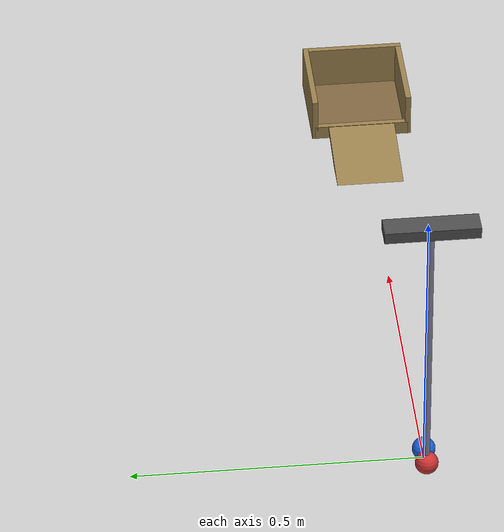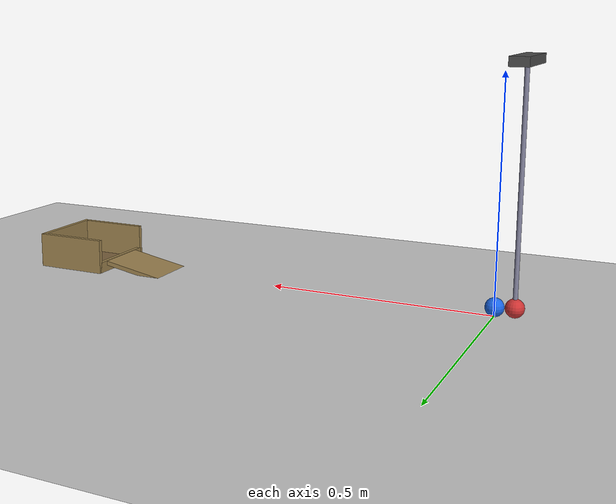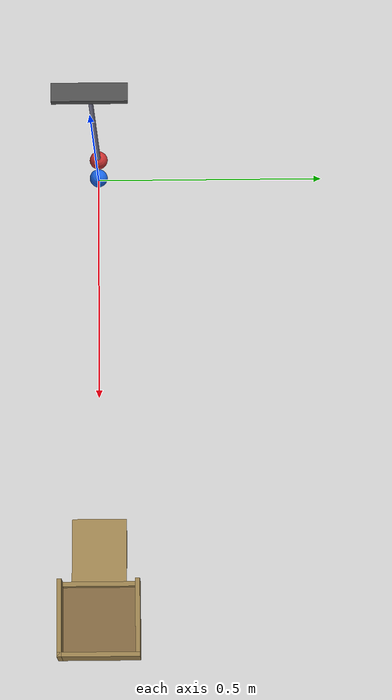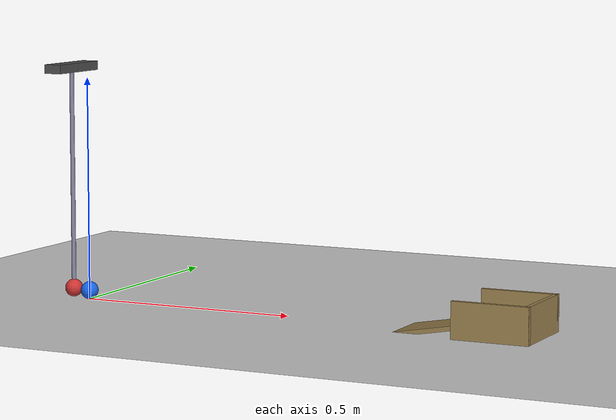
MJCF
<mujoco model="pendulum_ball_cup">
  <option timestep="0.002" gravity="0 0 -9.81"/>

  <worldbody>
    <light name="sun" pos="0.5 0 3" dir="0 0 -1" diffuse="0.8 0.8 0.8"/>
    <geom name="floor" type="plane" size="3 3 0.1" rgba="0.8 0.8 0.8 1"/>

    <!-- visual support beam at the pivot (no collisions) -->
    <geom name="support_beam" type="box" pos="-0.041 0 0.523" size="0.02 0.08 0.01" contype="0" conaffinity="0" rgba="0.3 0.3 0.3 1"/>

    <!-- pendulum: pivot 0.5 m above the bob's lowest point, bob just behind the ball -->
    <body name="pendulum" pos="-0.041 0 0.523">
      <joint name="pendulum_hinge" type="hinge" axis="0 1 0" pos="0 0 0"/>
      <geom name="pendulum_rod" type="capsule" fromto="0 0 0 0 0 -0.48" size="0.005" mass="0.02" rgba="0.5 0.5 0.6 1"/>
      <geom name="pendulum_bob" type="sphere" pos="0 0 -0.5" size="0.02" mass="0.3" rgba="0.8 0.2 0.2 1"/>
    </body>

    <!-- ball resting on the floor at the origin -->
    <body name="ball" pos="0 0 0.02">
      <freejoint name="ball_free"/>
      <geom name="ball" type="sphere" size="0.02" mass="0.03" friction="1 0.005 0.0001" solref="0.02 3" rgba="0.1 0.4 0.9 1"/>
    </body>

    <!-- cup centred 1 m from the ball's start, with a shallow entry ramp up to its front lip -->
    <body name="cup" pos="1 0 0">
      <geom name="cup_ramp" type="box" pos="-0.159121 0 0.005792" euler="0 -10.125 0" size="0.081266 0.06 0.005" rgba="0.6 0.5 0.3 1"/>
      <geom name="cup_front_wall" type="box" pos="-0.08 0 0.0125" size="0.005 0.085 0.0125" solref="0.02 4" rgba="0.6 0.5 0.3 1"/>
      <geom name="cup_back_wall" type="box" pos="0.08 0 0.04" size="0.005 0.09 0.04" solref="0.02 4" rgba="0.6 0.5 0.3 1"/>
      <geom name="cup_side_left" type="box" pos="0 0.085 0.04" size="0.085 0.005 0.04" solref="0.02 4" rgba="0.6 0.5 0.3 1"/>
      <geom name="cup_side_right" type="box" pos="0 -0.085 0.04" size="0.085 0.005 0.04" solref="0.02 4" rgba="0.6 0.5 0.3 1"/>
      <geom name="cup_base" type="box" pos="0 0 0.001" size="0.075 0.08 0.001" condim="6" friction="1 0.02 0.02" solref="0.02 4" rgba="0.5 0.4 0.25 1"/>
    </body>
  </worldbody>

  <keyframe>
    <key name="start" qpos="0.5585 0 0 0.02 1 0 0 0" qvel="0 0 0 0 0 0 0"/>
  </keyframe>
</mujoco>
